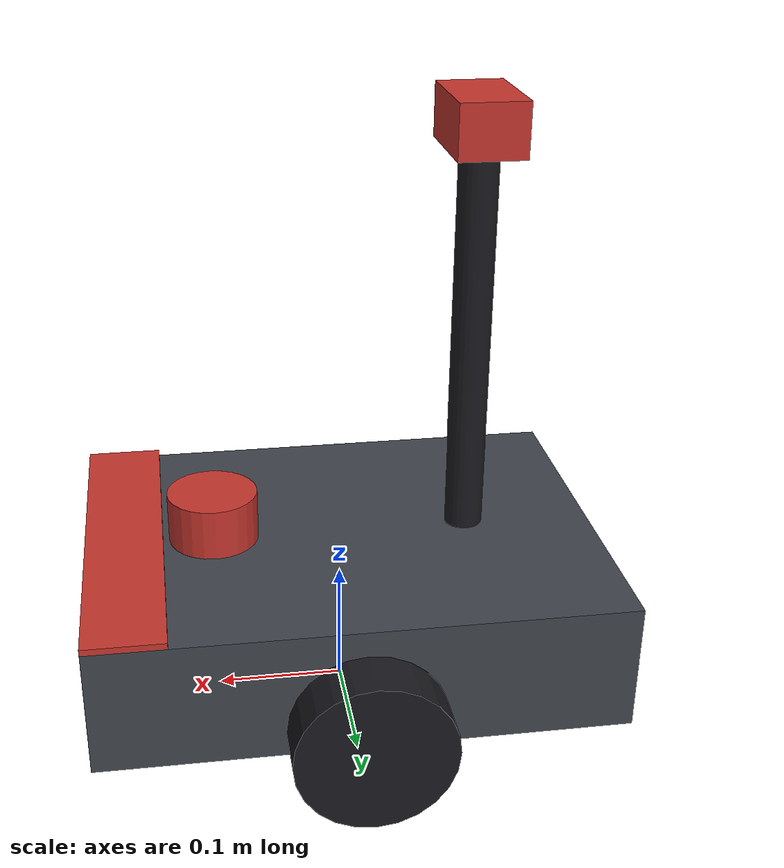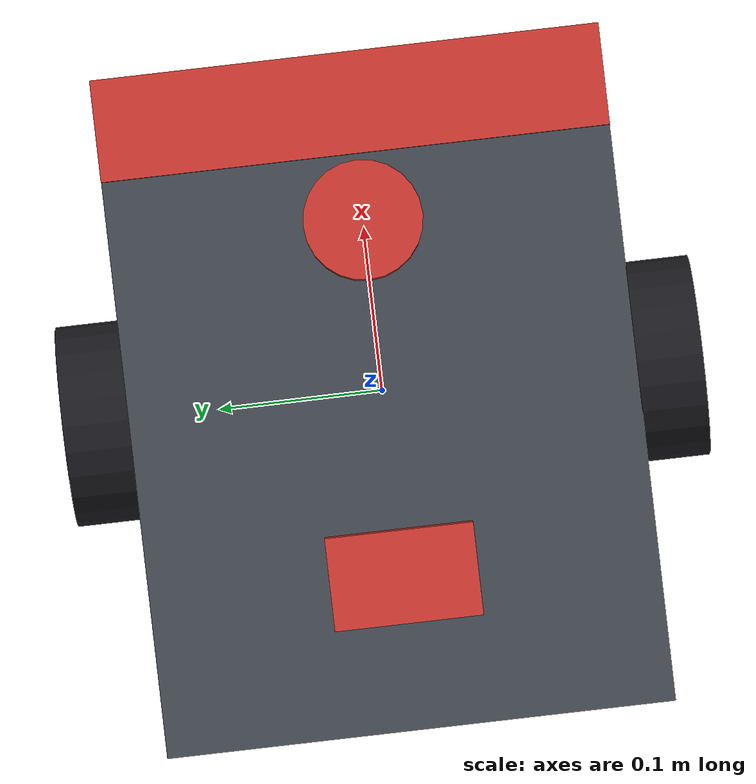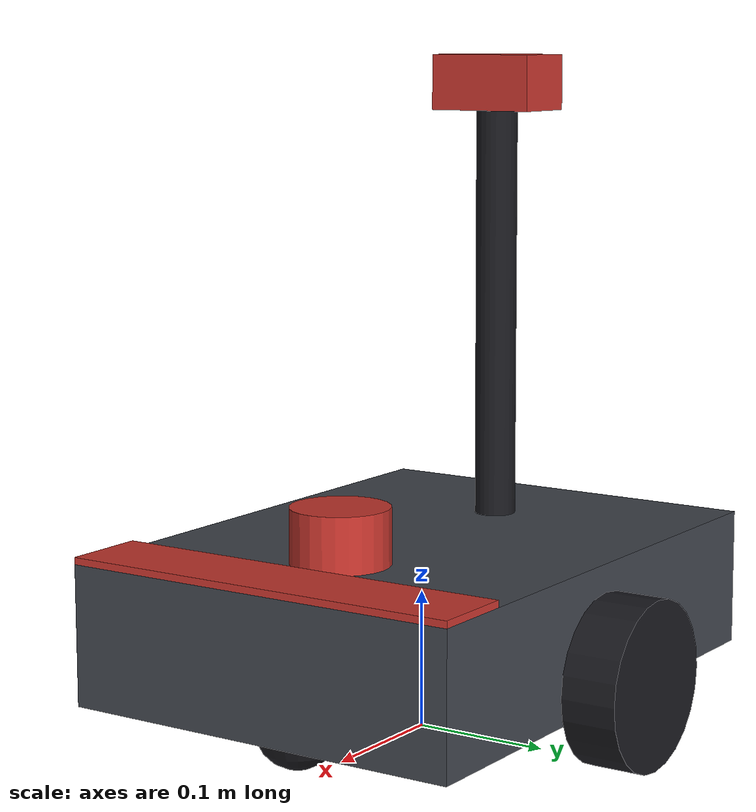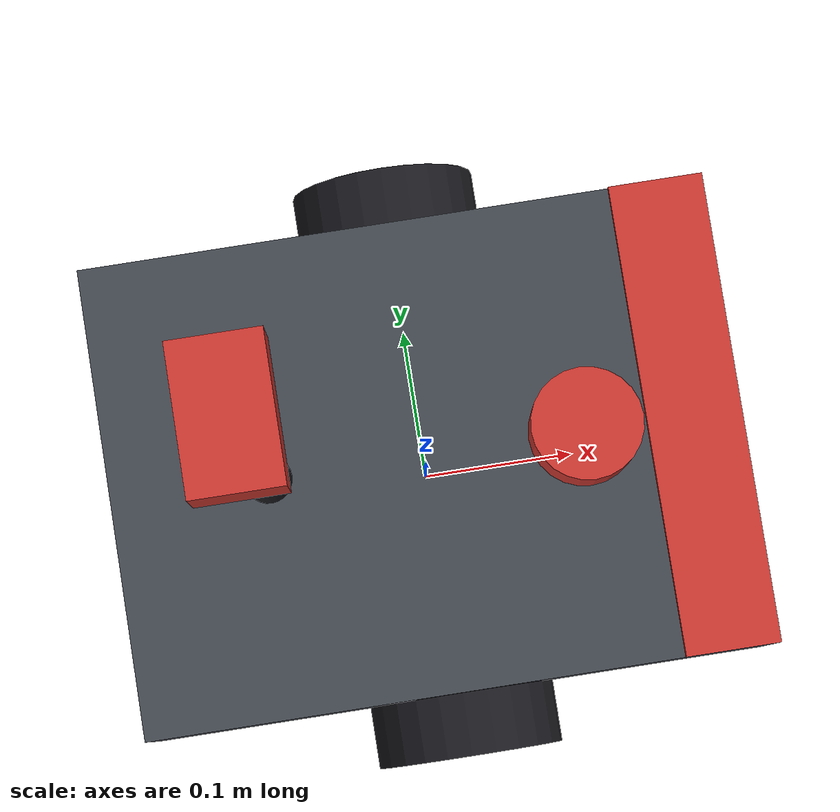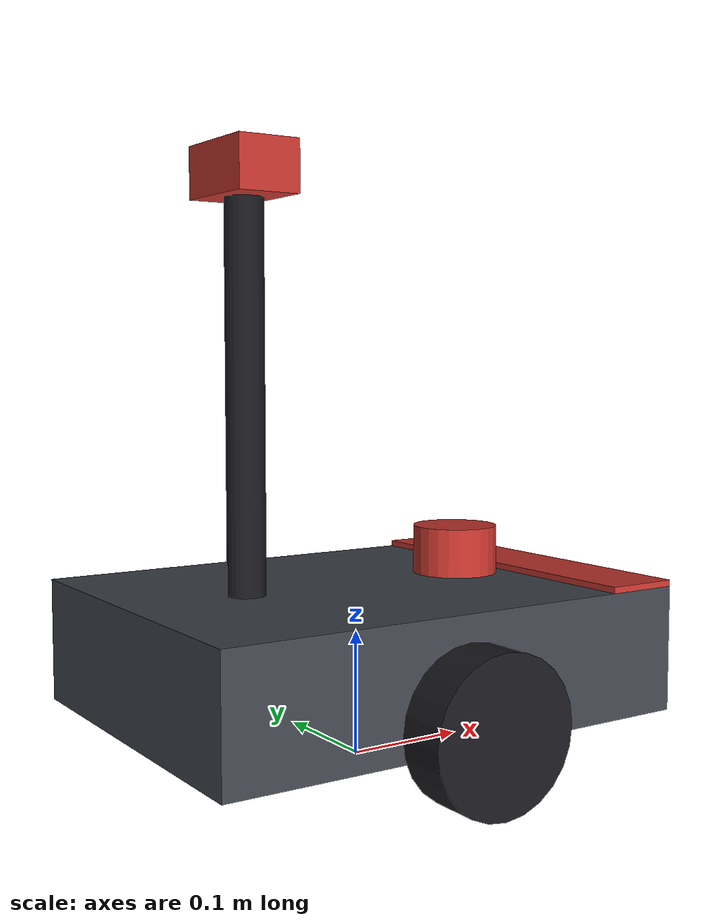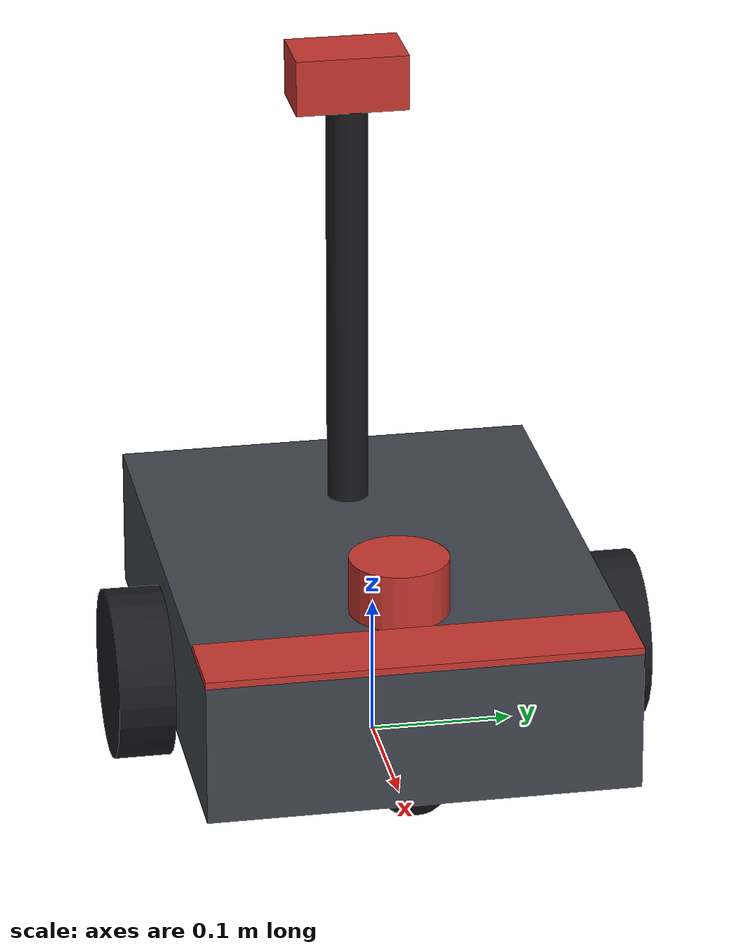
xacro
<?xml version="1.0"?>
<robot xmlns:xacro="http://www.ros.org/wiki/xacro" name="mast_bot">

  <xacro:arg name="namespace" default=""/>
  <xacro:arg name="prefix"    default=""/>
  <xacro:property name="ns"     value="$(arg namespace)"/>
  <xacro:property name="prefix" value="$(arg prefix)"/>
  <!-- Con namespace vacío los topics quedan /scan; con namespace, /robot_a/scan -->
  <xacro:property name="tns" value="${'/' + ns if ns else ''}"/>

  <xacro:include filename="$(find mini_bot)/urdf/inertials.xacro"/>

  <!-- Medidas del robot, en un solo sitio -->
  <xacro:property name="base_x"      value="0.40"/>
  <xacro:property name="base_y"      value="0.30"/>
  <xacro:property name="base_z"      value="0.10"/>
  <xacro:property name="base_mass"   value="5.0"/>
  <xacro:property name="wheel_r"     value="0.06"/>
  <xacro:property name="wheel_l"     value="0.04"/>
  <xacro:property name="wheel_mass"  value="0.5"/>
  <xacro:property name="wheel_sep"   value="0.34"/>   <!-- separación entre ruedas -->
  <xacro:property name="caster_r"    value="0.03"/>

  <material name="body_grey"><color rgba="0.25 0.27 0.30 1.0"/></material>
  <material name="accent_red"><color rgba="0.78 0.21 0.18 1.0"/></material>
  <material name="dark"><color rgba="0.10 0.10 0.12 1.0"/></material>

  <!-- ================================ GEOMETRÍA ================================= -->

  <link name="${prefix}base_footprint"/>

  <link name="${prefix}base_link">
    <visual>
      <origin xyz="0 0 0" rpy="0 0 0"/>
      <geometry><box size="${base_x} ${base_y} ${base_z}"/></geometry>
      <material name="body_grey"/>
    </visual>
    <visual>
      <origin xyz="${base_x/2 - 0.03} 0 ${base_z/2 + 0.0025}" rpy="0 0 0"/>
      <geometry><box size="0.06 ${base_y} 0.005"/></geometry>
      <material name="accent_red"/>
    </visual>
    <collision>
      <origin xyz="0 0 0" rpy="0 0 0"/>
      <geometry><box size="${base_x} ${base_y} ${base_z}"/></geometry>
    </collision>
    <xacro:box_inertia m="${base_mass}" x="${base_x}" y="${base_y}" z="${base_z}"/>
  </link>

  <joint name="base_joint" type="fixed">
    <parent link="${prefix}base_footprint"/>
    <child  link="${prefix}base_link"/>
    <origin xyz="0 0 ${wheel_r + base_z/2 - 0.02}" rpy="0 0 0"/>
  </joint>

  <!-- Una macro para las dos ruedas: cambia el lado y el signo de la Y -->
  <xacro:macro name="wheel" params="side reflect">
    <link name="${prefix}${side}_wheel_link">
      <visual>
        <origin xyz="0 0 0" rpy="${pi/2} 0 0"/>
        <geometry><cylinder radius="${wheel_r}" length="${wheel_l}"/></geometry>
        <material name="dark"/>
      </visual>
      <collision>
        <origin xyz="0 0 0" rpy="${pi/2} 0 0"/>
        <geometry><cylinder radius="${wheel_r}" length="${wheel_l}"/></geometry>
      </collision>
      <xacro:cylinder_inertia m="${wheel_mass}" r="${wheel_r}" l="${wheel_l}"/>
    </link>

    <joint name="${side}_wheel_joint" type="continuous">
      <parent link="${prefix}base_link"/>
      <child  link="${prefix}${side}_wheel_link"/>
      <origin xyz="0 ${reflect * wheel_sep/2} ${-base_z/2 + 0.02}" rpy="0 0 0"/>
      <axis xyz="0 1 0"/>
      <dynamics damping="0.05" friction="0.01"/>
    </joint>
  </xacro:macro>

  <xacro:wheel side="left"  reflect="1"/>
  <xacro:wheel side="right" reflect="-1"/>

  <link name="${prefix}caster_link">
    <visual>
      <geometry><sphere radius="${caster_r}"/></geometry>
      <material name="dark"/>
    </visual>
    <collision>
      <geometry><sphere radius="${caster_r}"/></geometry>
    </collision>
    <xacro:sphere_inertia m="0.2" r="${caster_r}"/>
  </link>

  <joint name="caster_joint" type="fixed">
    <parent link="${prefix}base_link"/>
    <child  link="${prefix}caster_link"/>
    <origin xyz="${base_x/2 - 0.05} 0 ${-base_z/2 - caster_r + 0.03}" rpy="0 0 0"/>
  </joint>

  <!-- Rozamiento bajo en la rueda loca, para que no arrastre -->
  <gazebo reference="${prefix}caster_link">
    <mu1>0.0</mu1>
    <mu2>0.0</mu2>
  </gazebo>

  <gazebo reference="${prefix}left_wheel_link">
    <mu1>1.0</mu1>
    <mu2>1.0</mu2>
  </gazebo>
  <gazebo reference="${prefix}right_wheel_link">
    <mu1>1.0</mu1>
    <mu2>1.0</mu2>
  </gazebo>

  <!-- ================================= LiDAR =================================== -->

  <link name="${prefix}lidar_link">
    <visual>
      <geometry><cylinder radius="0.035" length="0.04"/></geometry>
      <material name="accent_red"/>
    </visual>
    <collision>
      <geometry><cylinder radius="0.035" length="0.04"/></geometry>
    </collision>
    <xacro:cylinder_inertia m="0.15" r="0.035" l="0.04"/>
  </link>

  <joint name="lidar_joint" type="fixed">
    <parent link="${prefix}base_link"/>
    <child  link="${prefix}lidar_link"/>
    <origin xyz="0.10 0 ${base_z/2 + 0.02}" rpy="0 0 0"/>
  </joint>

  <!-- LiDAR de baja resolución: 180 muestras a 5 Hz. Suficiente para ver el mundo,
       barato para una GPU por software. -->
  <gazebo reference="${prefix}lidar_link">
    <sensor name="lidar" type="gpu_lidar">
      <topic>${tns}/scan</topic>
      <gz_frame_id>${prefix}lidar_link</gz_frame_id>
      <update_rate>5</update_rate>
      <always_on>true</always_on>
      <visualize>true</visualize>
      <lidar>
        <scan>
          <horizontal>
            <samples>180</samples>
            <resolution>1</resolution>
            <min_angle>-1.5708</min_angle>
            <max_angle>1.5708</max_angle>
          </horizontal>
        </scan>
        <range>
          <min>0.12</min>
          <max>8.0</max>
          <resolution>0.02</resolution>
        </range>
      </lidar>
    </sensor>
  </gazebo>

  <!-- ================================ MÁSTIL =================================== -->
  <!-- Un poste fijo sobre la base, y encima una cabeza que gira alrededor del eje vertical
       (mast_joint, revolute, ±90°) con la cámara. -->

  <xacro:property name="mast_h" value="0.30"/>

  <link name="${prefix}mast_link">
    <visual>
      <origin xyz="0 0 ${mast_h/2}" rpy="0 0 0"/>
      <geometry><cylinder radius="0.015" length="${mast_h}"/></geometry>
      <material name="dark"/>
    </visual>
    <collision>
      <origin xyz="0 0 ${mast_h/2}" rpy="0 0 0"/>
      <geometry><cylinder radius="0.015" length="${mast_h}"/></geometry>
    </collision>
    <inertial>
      <origin xyz="0 0 ${mast_h/2}" rpy="0 0 0"/>
      <mass value="0.2"/>
      <inertia ixx="0.0015" ixy="0" ixz="0" iyy="0.0015" iyz="0" izz="0.00003"/>
    </inertial>
  </link>

  <joint name="mast_base_joint" type="fixed">
    <parent link="${prefix}base_link"/>
    <child  link="${prefix}mast_link"/>
    <origin xyz="-0.10 0 ${base_z/2}" rpy="0 0 0"/>
  </joint>

  <link name="${prefix}mast_head_link">
    <visual>
      <geometry><box size="0.05 0.08 0.04"/></geometry>
      <material name="accent_red"/>
    </visual>
    <collision>
      <geometry><box size="0.05 0.08 0.04"/></geometry>
    </collision>
    <xacro:box_inertia m="0.1" x="0.05" y="0.08" z="0.04"/>
  </link>

  <joint name="mast_joint" type="revolute">
    <parent link="${prefix}mast_link"/>
    <child  link="${prefix}mast_head_link"/>
    <origin xyz="0 0 ${mast_h + 0.02}" rpy="0 0 0"/>
    <axis xyz="0 0 1"/>
    <limit lower="-1.57" upper="1.57" effort="5.0" velocity="2.0"/>
    <dynamics damping="0.1" friction="0.01"/>
  </joint>

  <link name="${prefix}mast_camera_link">
    <xacro:box_inertia m="0.01" x="0.01" y="0.01" z="0.01"/>
  </link>

  <joint name="mast_camera_joint" type="fixed">
    <parent link="${prefix}mast_head_link"/>
    <child  link="${prefix}mast_camera_link"/>
    <origin xyz="0.03 0 0" rpy="0 0 0"/>
  </joint>

  <!-- La cámara del mástil: 320 × 240 a 10 Hz, como la del morro del mini_bot. -->
  <gazebo reference="${prefix}mast_camera_link">
    <sensor name="mast_camera" type="camera">
      <topic>${tns}/mast_camera/image</topic>
      <gz_frame_id>${prefix}mast_camera_link</gz_frame_id>
      <update_rate>10</update_rate>
      <always_on>true</always_on>
      <camera>
        <horizontal_fov>1.047</horizontal_fov>
        <image>
          <width>320</width>
          <height>240</height>
          <format>R8G8B8</format>
        </image>
        <clip>
          <near>0.1</near>
          <far>15.0</far>
        </clip>
      </camera>
    </sensor>
  </gazebo>

  <!-- =============================== ros2_control ================================ -->
  <!-- Las ruedas, como en el preámbulo 3. El mástil, todavía no. -->

  <ros2_control name="${prefix}GazeboSimSystem" type="system">
    <hardware>
      <plugin>gz_ros2_control/GazeboSimSystem</plugin>
    </hardware>
    <joint name="left_wheel_joint">
      <command_interface name="velocity">
        <param name="min">-10.0</param>
        <param name="max">10.0</param>
      </command_interface>
      <state_interface name="position"/>
      <state_interface name="velocity"/>
    </joint>
    <joint name="right_wheel_joint">
      <command_interface name="velocity">
        <param name="min">-10.0</param>
        <param name="max">10.0</param>
      </command_interface>
      <state_interface name="position"/>
      <state_interface name="velocity"/>
    </joint>
    <!-- EJERCICIO 3: pega aquí el joint del mástil. -->
    <joint name="mast_joint">
      <command_interface name="position">
        <param name="min">-1.57</param>
        <param name="max">1.57</param>
      </command_interface>
      <state_interface name="position"/>
      <state_interface name="velocity"/>
    </joint>
  </ros2_control>

  <gazebo>
    <plugin filename="gz_ros2_control-system" name="gz_ros2_control::GazeboSimROS2ControlPlugin">
      <parameters>$(find mini_bot)/config/mast_controllers.yaml</parameters>
      <ros>
        <namespace>${ns}</namespace>
      </ros>
    </plugin>
  </gazebo>

</robot>

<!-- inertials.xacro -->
<!-- Macros de inercia. No hace falta tocarlas en el taller: se usan tal cual. -->
<robot xmlns:xacro="http://www.ros.org/wiki/xacro">

  <xacro:macro name="box_inertia" params="m x y z">
    <inertial>
      <mass value="${m}"/>
      <inertia ixx="${m*(y*y+z*z)/12.0}" ixy="0.0" ixz="0.0"
               iyy="${m*(x*x+z*z)/12.0}" iyz="0.0"
               izz="${m*(x*x+y*y)/12.0}"/>
    </inertial>
  </xacro:macro>

  <xacro:macro name="cylinder_inertia" params="m r l">
    <inertial>
      <mass value="${m}"/>
      <inertia ixx="${m*(3*r*r+l*l)/12.0}" ixy="0.0" ixz="0.0"
               iyy="${m*(3*r*r+l*l)/12.0}" iyz="0.0"
               izz="${m*r*r/2.0}"/>
    </inertial>
  </xacro:macro>

  <xacro:macro name="sphere_inertia" params="m r">
    <inertial>
      <mass value="${m}"/>
      <inertia ixx="${2.0*m*r*r/5.0}" ixy="0.0" ixz="0.0"
               iyy="${2.0*m*r*r/5.0}" iyz="0.0"
               izz="${2.0*m*r*r/5.0}"/>
    </inertial>
  </xacro:macro>

</robot>
